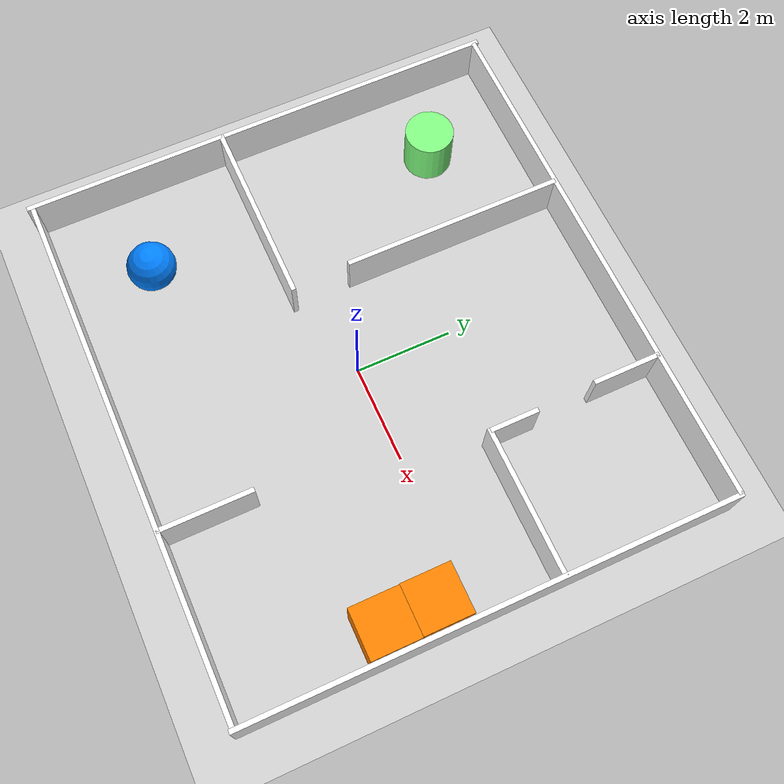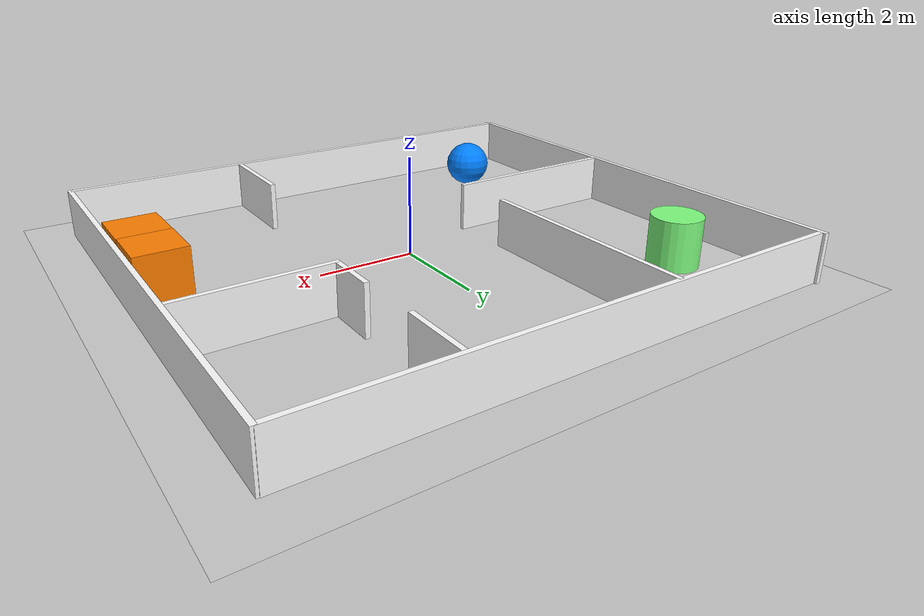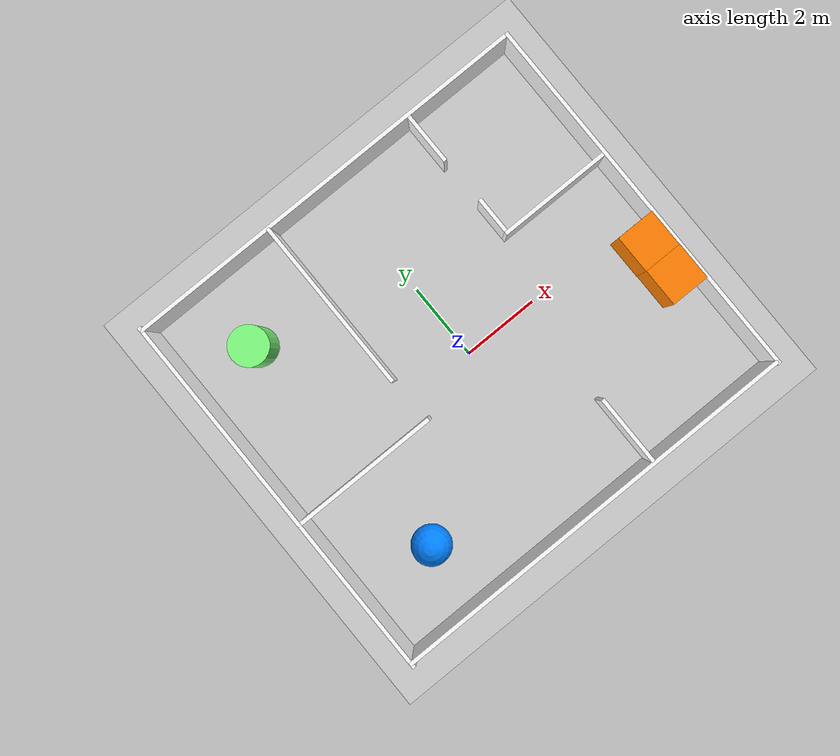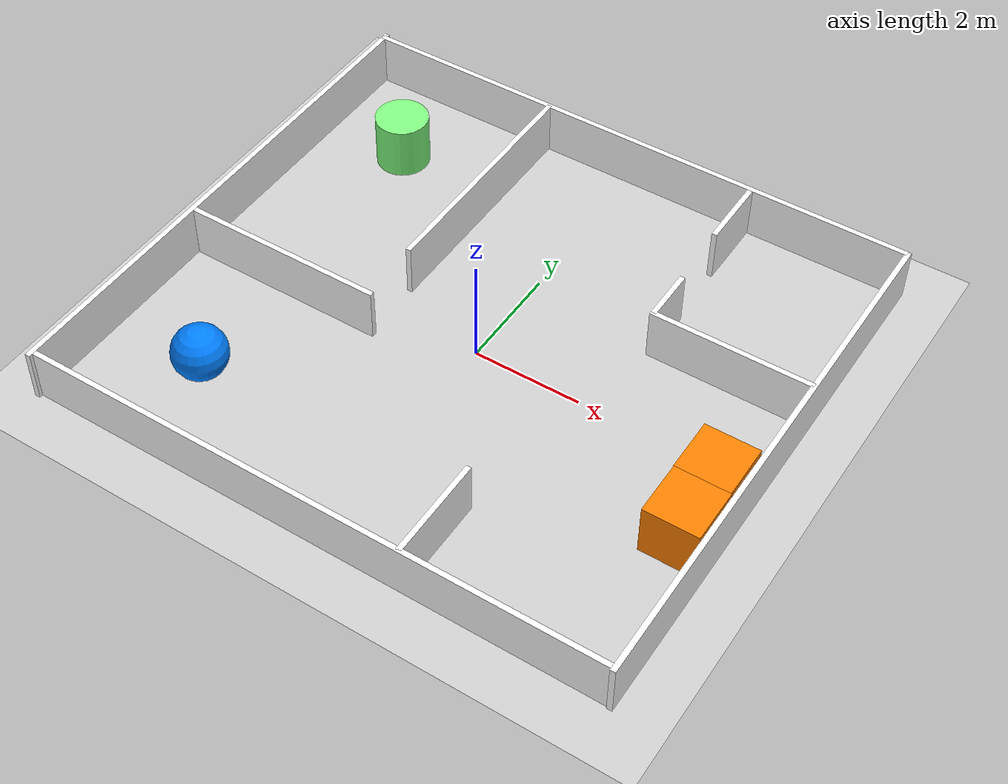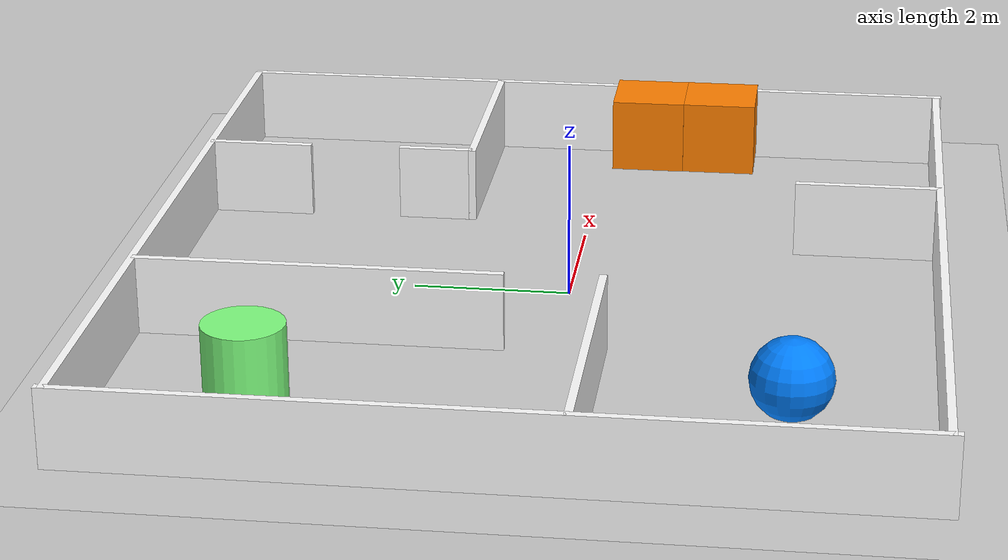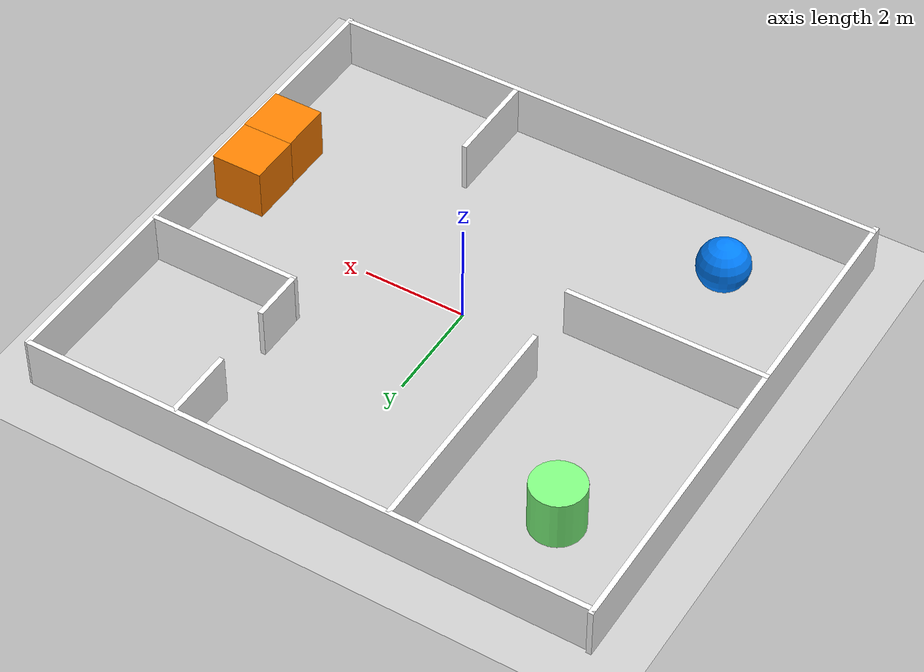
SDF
<sdf version='1.10'>
  <world name='test'>
    <physics name='1ms' type='dart'>
      <max_step_size>0.001</max_step_size>
      <real_time_factor>1</real_time_factor>
      <real_time_update_rate>1000</real_time_update_rate>
    </physics>

    <plugin name='gz::sim::systems::Physics' filename='gz-sim-physics-system'/>
    <plugin name='gz::sim::systems::UserCommands' filename='gz-sim-user-commands-system'/>
    <plugin name='gz::sim::systems::SceneBroadcaster' filename='gz-sim-scene-broadcaster-system'/>
    <plugin name='gz::sim::systems::Contact' filename='gz-sim-contact-system'/>
    <plugin name='gz::sim::systems::Sensors' filename='gz-sim-sensors-system'>
      <render_engine>ogre2</render_engine>
    </plugin>

    <gravity>0 0 -9.8</gravity>
    <scene>
      <ambient>0.4 0.4 0.4 1</ambient>
      <background>0.7 0.7 0.7 1</background>
      <shadows>true</shadows>
    </scene>

    <model name='ground_plane'>
      <static>true</static>
      <link name='link'>
        <collision name='collision'>
          <geometry><plane><normal>0 0 1</normal><size>100 100</size></plane></geometry>
        </collision>
        <visual name='visual'>
          <geometry><plane><normal>0 0 1</normal><size>100 100</size></plane></geometry>
          <material>
            <ambient>0.8 0.8 0.8 1</ambient>
            <diffuse>0.8 0.8 0.8 1</diffuse>
          </material>
        </visual>
      </link>
    </model>

    <model name='wall_8'>
      <static>true</static>
      <pose>-0.1 5.2 0.5 0 0 0</pose>
      <link name='link'>
        <collision name='collision'><geometry><box><size>11 0.1 1</size></box></geometry></collision>
        <visual name='visual'>
          <geometry><box><size>11 0.1 1</size></box></geometry>
          <material><ambient>1 1 1 1</ambient><diffuse>1 1 1 1</diffuse></material>
        </visual>
      </link>
    </model>

    <model name='wall_10'>
      <static>true</static>
      <pose>-0.1 -4.684 0.5 0 0 0</pose>
      <link name='link'>
        <collision name='collision'><geometry><box><size>11 0.1 1</size></box></geometry></collision>
        <visual name='visual'>
          <geometry><box><size>11 0.1 1</size></box></geometry>
          <material><ambient>1 1 1 1</ambient><diffuse>1 1 1 1</diffuse></material>
        </visual>
      </link>
    </model>

    <model name='wall_12'>
      <static>true</static>
      <pose>-5.556 0.251 0.5 0 0 1.5708</pose>
      <link name='link'>
        <collision name='collision'><geometry><box><size>10.1 0.1 1</size></box></geometry></collision>
        <visual name='visual'>
          <geometry><box><size>10.1 0.1 1</size></box></geometry>
          <material><ambient>1 1 1 1</ambient><diffuse>1 1 1 1</diffuse></material>
        </visual>
      </link>
    </model>

    <model name='wall_13'>
      <static>true</static>
      <pose>5.4 0.24 0.5 0 0 1.5708</pose>
      <link name='link'>
        <collision name='collision'><geometry><box><size>10 0.1 1</size></box></geometry></collision>
        <visual name='visual'>
          <geometry><box><size>10 0.1 1</size></box></geometry>
          <material><ambient>1 1 1 1</ambient><diffuse>1 1 1 1</diffuse></material>
        </visual>
      </link>
    </model>

    <model name='wall_16'>
      <static>true</static>
      <pose>-3.65 -0.6 0.5 0 0 0</pose>
      <link name='link'>
        <collision name='collision'><geometry><box><size>3.9 0.1 1</size></box></geometry></collision>
        <visual name='visual'>
          <geometry><box><size>3.9 0.1 1</size></box></geometry>
          <material><ambient>1 1 1 1</ambient><diffuse>1 1 1 1</diffuse></material>
        </visual>
      </link>
    </model>

    <model name='wall_17'>
      <static>true</static>
      <pose>-1.8 2.9 0.5 0 0 -1.5708</pose>
      <link name='link'>
        <collision name='collision'><geometry><box><size>4.6 0.1 1</size></box></geometry></collision>
        <visual name='visual'>
          <geometry><box><size>4.6 0.1 1</size></box></geometry>
          <material><ambient>1 1 1 1</ambient><diffuse>1 1 1 1</diffuse></material>
        </visual>
      </link>
    </model>

    <model name='wall_25'>
      <static>true</static>
      <pose>3.9 1.6 0.5 0 0 -3.1416</pose>
      <link name='link'>
        <collision name='collision'><geometry><box><size>3 0.1 1</size></box></geometry></collision>
        <visual name='visual'>
          <geometry><box><size>3 0.1 1</size></box></geometry>
          <material><ambient>1 1 1 1</ambient><diffuse>1 1 1 1</diffuse></material>
        </visual>
      </link>
    </model>

    <model name='wall_26'>
      <static>true</static>
      <pose>2.45 2.1 0.5 0 0 1.5708</pose>
      <link name='link'>
        <collision name='collision'><geometry><box><size>1 0.1 1</size></box></geometry></collision>
        <visual name='visual'>
          <geometry><box><size>1 0.1 1</size></box></geometry>
          <material><ambient>1 1 1 1</ambient><diffuse>1 1 1 1</diffuse></material>
        </visual>
      </link>
    </model>

    <model name='wall_27'>
      <static>true</static>
      <pose>2.4 4.51 0.5 0 0 -1.5708</pose>
      <link name='link'>
        <collision name='collision'><geometry><box><size>1.4 0.1 1</size></box></geometry></collision>
        <visual name='visual'>
          <geometry><box><size>1.4 0.1 1</size></box></geometry>
          <material><ambient>1 1 1 1</ambient><diffuse>1 1 1 1</diffuse></material>
        </visual>
      </link>
    </model>

    <model name='wall_29'>
      <static>true</static>
      <pose>1.7 -3.75 0.5 0 0 1.5708</pose>
      <link name='link'>
        <collision name='collision'><geometry><box><size>1.9 0.1 1</size></box></geometry></collision>
        <visual name='visual'>
          <geometry><box><size>1.9 0.1 1</size></box></geometry>
          <material><ambient>1 1 1 1</ambient><diffuse>1 1 1 1</diffuse></material>
        </visual>
      </link>
    </model>

    <model name='sphere'>
      <pose>-3.54 -2.94 0.6 0 0 0</pose> <link name='sphere_link'>
        <collision name='collision'>
          <geometry><sphere><radius>0.5</radius></sphere></geometry>
        </collision>
        <visual name='sphere_visual'>
          <geometry><sphere><radius>0.5</radius></sphere></geometry>
          <material>
            <ambient>0 0.5 1 1</ambient>
            <diffuse>0 0.5 1 1</diffuse>
          </material>
        </visual>
      </link>
    </model>

    <model name='cylinder'>
      <pose>-3.84 3.34 0.6 0 0 0</pose>
      <link name='cylinder_link'>
        <collision name='collision'>
          <geometry><cylinder><radius>0.5</radius><length>1</length></cylinder></geometry>
        </collision>
        <visual name='cylinder_visual'>
          <geometry><cylinder><radius>0.5</radius><length>1</length></cylinder></geometry>
          <material>
            <ambient>0.5 1 0.5 1</ambient>
            <diffuse>0.5 1 0.5 1</diffuse>
          </material>
        </visual>
      </link>
    </model>

    <model name='box'>
      <pose>4.84 -0.64 0.6 0 0 0</pose>
      <link name='box_link'>
        <collision name='collision'>
          <geometry><box><size>1 1 1</size></box></geometry>
        </collision>
        <visual name='box_visual'>
          <geometry><box><size>1 1 1</size></box></geometry>
          <material>
            <ambient>1 0.5 0 1</ambient>
            <diffuse>1 0.5 0 1</diffuse>
          </material>
        </visual>
      </link>
    </model>

    <model name='box_0'>
      <pose>4.85 -1.64 0.6 0 0 0</pose>
      <link name='box_link'>
        <collision name='collision'>
          <geometry><box><size>1 1 1</size></box></geometry>
        </collision>
        <visual name='box_visual'>
          <geometry><box><size>1 1 1</size></box></geometry>
          <material>
            <ambient>1 0.5 0 1</ambient>
            <diffuse>1 0.5 0 1</diffuse>
          </material>
        </visual>
      </link>
    </model>

    <light name='sun' type='directional'>
      <pose>0 0 10 0 0 0</pose>
      <cast_shadows>true</cast_shadows>
      <intensity>1</intensity>
      <direction>-0.5 0.1 -0.9</direction>
      <diffuse>0.8 0.8 0.8 1</diffuse>
      <specular>0.2 0.2 0.2 1</specular>
    </light>
  </world>
</sdf>
